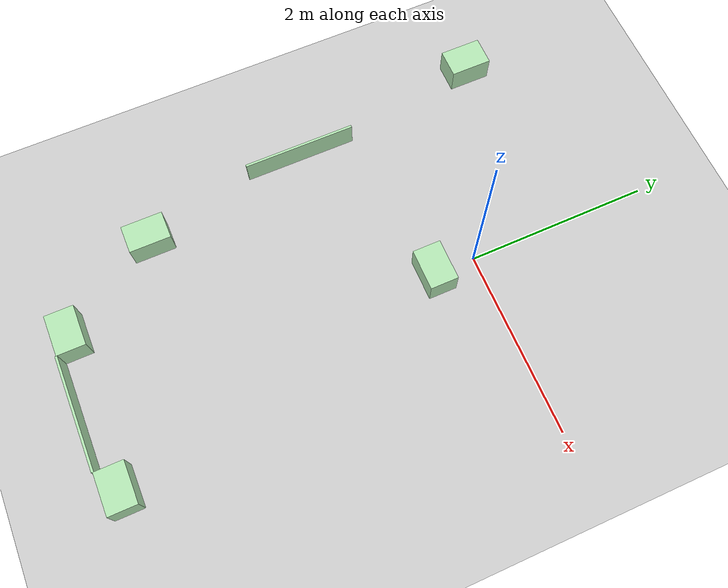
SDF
<sdf version="1.6">
 <world name="default">
  <scene><ambient>0.5 0.5 0.5 1</ambient><background>0.5 0.5 0.5 1</background><shadows>0</shadows></scene>
  <physics name="default_physics" default="0" type="ode">
   <ode>
    <solver>
     <type>quick</type>
     <iters>10</iters>
     <sor>1.3</sor>
     <use_dynamic_moi_rescaling>0</use_dynamic_moi_rescaling>
    </solver>
    <constraints>
     <cfm>0</cfm>
     <erp>0.2</erp>
     <contact_max_correcting_vel>100</contact_max_correcting_vel>
     <contact_surface_layer>0.001</contact_surface_layer>
    </constraints>
   </ode>
   <real_time_update_rate>1000</real_time_update_rate>
   <max_step_size>0.001</max_step_size>
   <real_time_factor>1</real_time_factor>
  </physics>
  <light name="directional_light_1" type="directional">
   <cast_shadows>0</cast_shadows>
   <pose>0 0 30 0.1 0.1 0</pose>
   <diffuse>1 1 1 1</diffuse>
   <specular>0.1 0.1 0.1 1</specular>
   <attenuation><range>300</range></attenuation>
   <direction>0.1 0.1 -1</direction>
  </light>
  <model name="ground_plane">
   <static>1</static>
   <link name="link">
    <collision name="collision">
     <geometry><plane><normal>0 0 1</normal><size>100 100</size></plane></geometry>
     <surface><friction><ode><mu>100</mu><mu2>50</mu2></ode></friction></surface>
    </collision>
    <visual name="visual">
     <cast_shadows>0</cast_shadows>
     <geometry><plane><normal>0 0 1</normal><size>100 100</size></plane></geometry>
     <material>
      <script><uri>file://media/materials/scripts/gazebo.material</uri><name>Gazebo/Grey</name></script>
     </material>
    </visual>
   </link>
  </model>
  <model name="wall_1">
   <static>1</static>
   <link name="wall_1_link">
    <pose>0 -4.2672 0.15 0 -0 1.5708</pose>
    <collision name="wall_1_collision"><geometry><box><size>0.0254 1.2192 0.3</size></box></geometry></collision>
    <visual name="wall_1_visual">
     <geometry><box><size>0.0254 1.2192 0.3</size></box></geometry>
     <material>
      <ambient>0.7 0.9 0.7 1</ambient>
      <diffuse>0.7 0.9 0.7 1</diffuse>
      <specular>0.1 0.1 0.1 1</specular>
      <emissive>0 0 0 0</emissive>
     </material>
    </visual>
   </link>
  </model>
  <model name="wall_5">
   <static>1</static>
   <link name="wall_5_link">
    <pose>-1.8288 -1.2192 0.15 0 -0 0</pose>
    <collision name="wall_5_collision"><geometry><box><size>0.0254 1.2192 0.3</size></box></geometry></collision>
    <visual name="wall_5_visual">
     <geometry><box><size>0.0254 1.2192 0.3</size></box></geometry>
     <material>
      <ambient>0.7 0.9 0.7 1</ambient>
      <diffuse>0.7 0.9 0.7 1</diffuse>
      <specular>0.1 0.1 0.1 1</specular>
      <emissive>0 0 0 0</emissive>
     </material>
    </visual>
   </link>
  </model>
  <model name="box_7">
   <static>1</static>
   <link name="box_7_link">
    <pose>0 -0.4572 0.15 0 -0 1.5708</pose>
    <collision name="box_7_collision"><geometry><box><size>0.3048 0.4445 0.3</size></box></geometry></collision>
    <visual name="box_7_visual">
     <geometry><box><size>0.3048 0.4445 0.3</size></box></geometry>
     <material>
      <ambient>0.7 0.9 0.7 1</ambient>
      <diffuse>0.7 0.9 0.7 1</diffuse>
      <specular>0.1 0.1 0.1 1</specular>
      <emissive>0 0 0 0</emissive>
     </material>
    </visual>
   </link>
  </model>
  <model name="box_9">
   <static>1</static>
   <link name="box_9_link">
    <pose>0.83185 -4.1148 0.15 0 -0 1.5708</pose>
    <collision name="box_9_collision"><geometry><box><size>0.3048 0.4445 0.3</size></box></geometry></collision>
    <visual name="box_9_visual">
     <geometry><box><size>0.3048 0.4445 0.3</size></box></geometry>
     <material>
      <ambient>0.7 0.9 0.7 1</ambient>
      <diffuse>0.7 0.9 0.7 1</diffuse>
      <specular>0.1 0.1 0.1 1</specular>
      <emissive>0 0 0 0</emissive>
     </material>
    </visual>
   </link>
  </model>
  <model name="box_10">
   <static>1</static>
   <link name="box_10_link">
    <pose>-0.83185 -4.1148 0.15 0 -0 1.5708</pose>
    <collision name="box_10_collision"><geometry><box><size>0.3048 0.4445 0.3</size></box></geometry></collision>
    <visual name="box_10_visual">
     <geometry><box><size>0.3048 0.4445 0.3</size></box></geometry>
     <material>
      <ambient>0.7 0.9 0.7 1</ambient>
      <diffuse>0.7 0.9 0.7 1</diffuse>
      <specular>0.1 0.1 0.1 1</specular>
      <emissive>0 0 0 0</emissive>
     </material>
    </visual>
   </link>
  </model>
  <model name="box_13">
   <static>1</static>
   <link name="box_13_link">
    <pose>-1.524 -3.048 0.15 0 -0 0</pose>
    <collision name="box_13_collision"><geometry><box><size>0.3048 0.4445 0.3</size></box></geometry></collision>
    <visual name="box_13_visual">
     <geometry><box><size>0.3048 0.4445 0.3</size></box></geometry>
     <material>
      <ambient>0.7 0.9 0.7 1</ambient>
      <diffuse>0.7 0.9 0.7 1</diffuse>
      <specular>0.1 0.1 0.1 1</specular>
      <emissive>0 0 0 0</emissive>
     </material>
    </visual>
   </link>
  </model>
  <model name="box_15">
   <static>1</static>
   <link name="box_15_link">
    <pose>-2.1336 0.9144 0.15 0 -0 0</pose>
    <collision name="box_15_collision"><geometry><box><size>0.3048 0.4445 0.3</size></box></geometry></collision>
    <visual name="box_15_visual">
     <geometry><box><size>0.3048 0.4445 0.3</size></box></geometry>
     <material>
      <ambient>0.7 0.9 0.7 1</ambient>
      <diffuse>0.7 0.9 0.7 1</diffuse>
      <specular>0.1 0.1 0.1 1</specular>
      <emissive>0 0 0 0</emissive>
     </material>
    </visual>
   </link>
  </model>
  <gravity>0 0 -9.81</gravity>
  <magnetic_field>6e-06 2.3e-05 -4.2e-05</magnetic_field>
  <atmosphere type="adiabatic"/>
  <spherical_coordinates>
   <surface_model>EARTH_WGS84</surface_model>
   <latitude_deg>0</latitude_deg>
   <longitude_deg>0</longitude_deg>
   <elevation>0</elevation>
   <heading_deg>0</heading_deg>
  </spherical_coordinates>
 </world>
</sdf>
